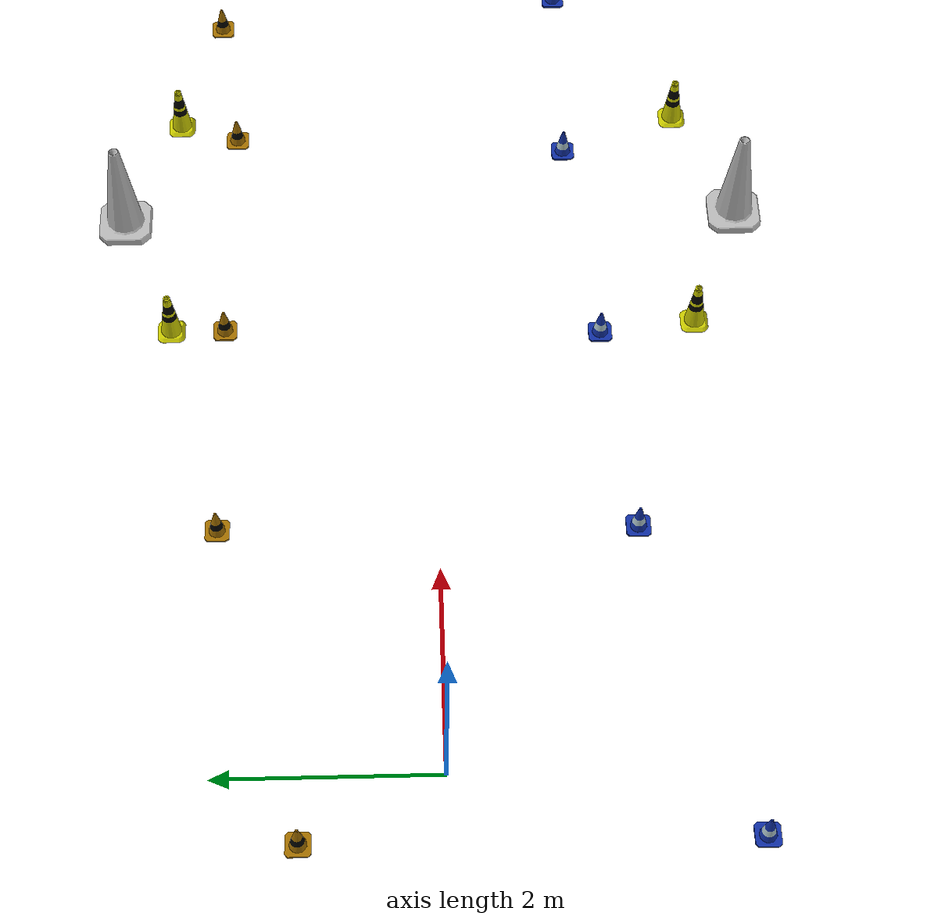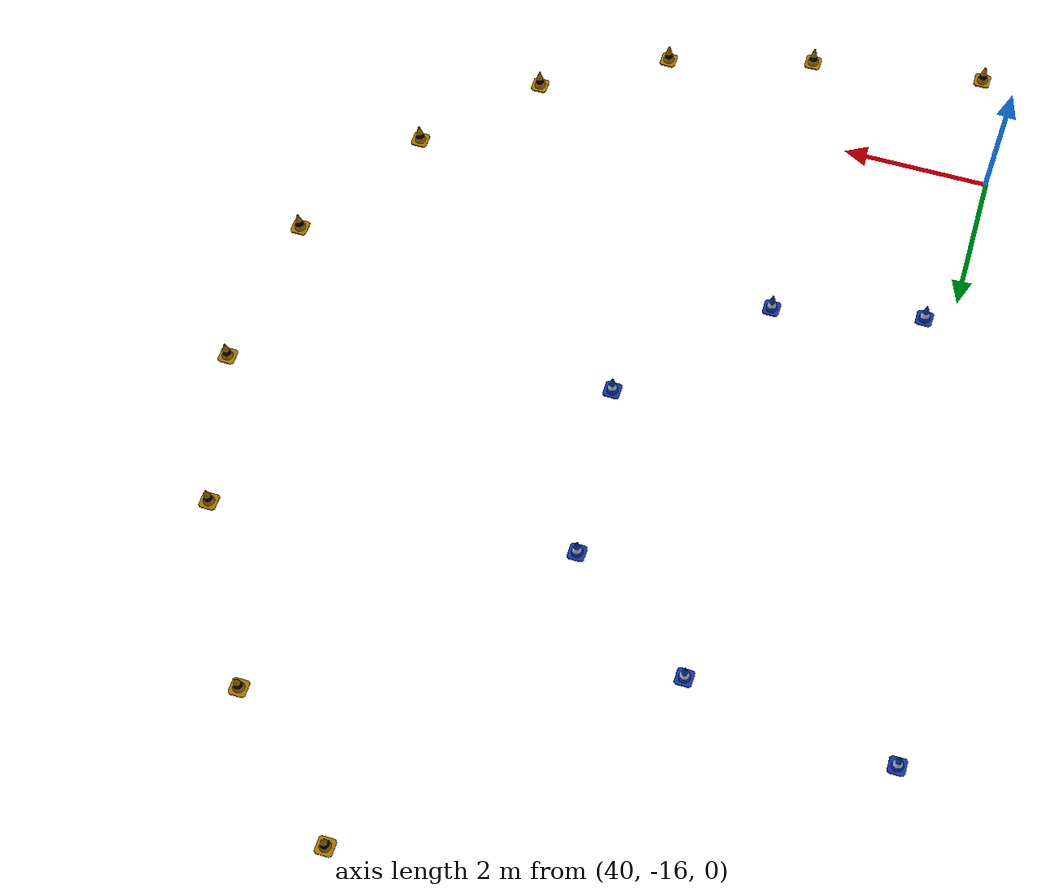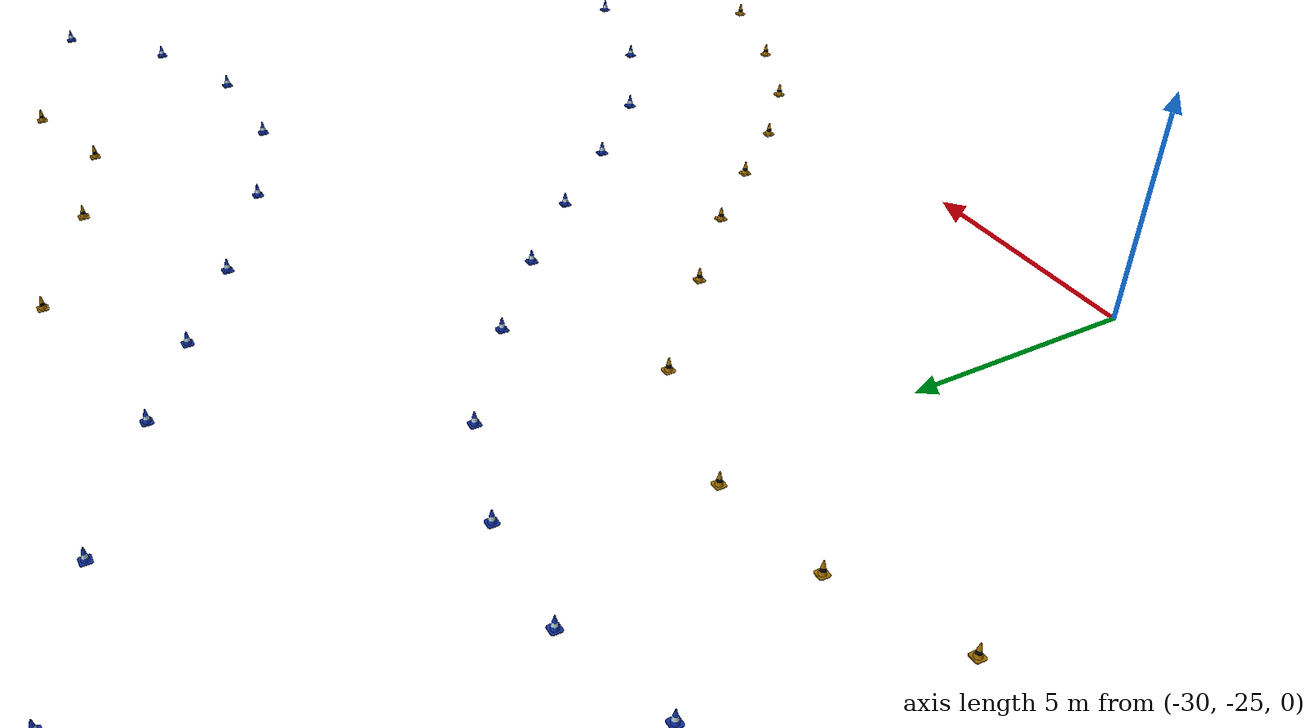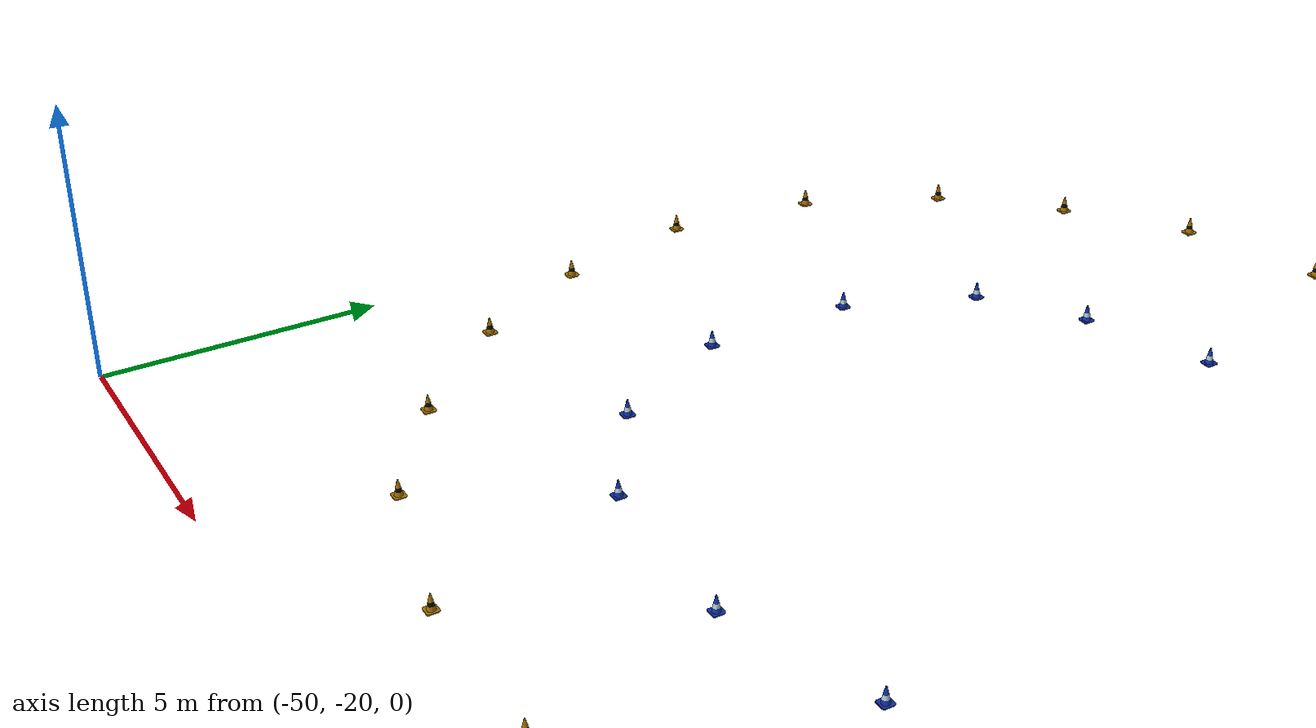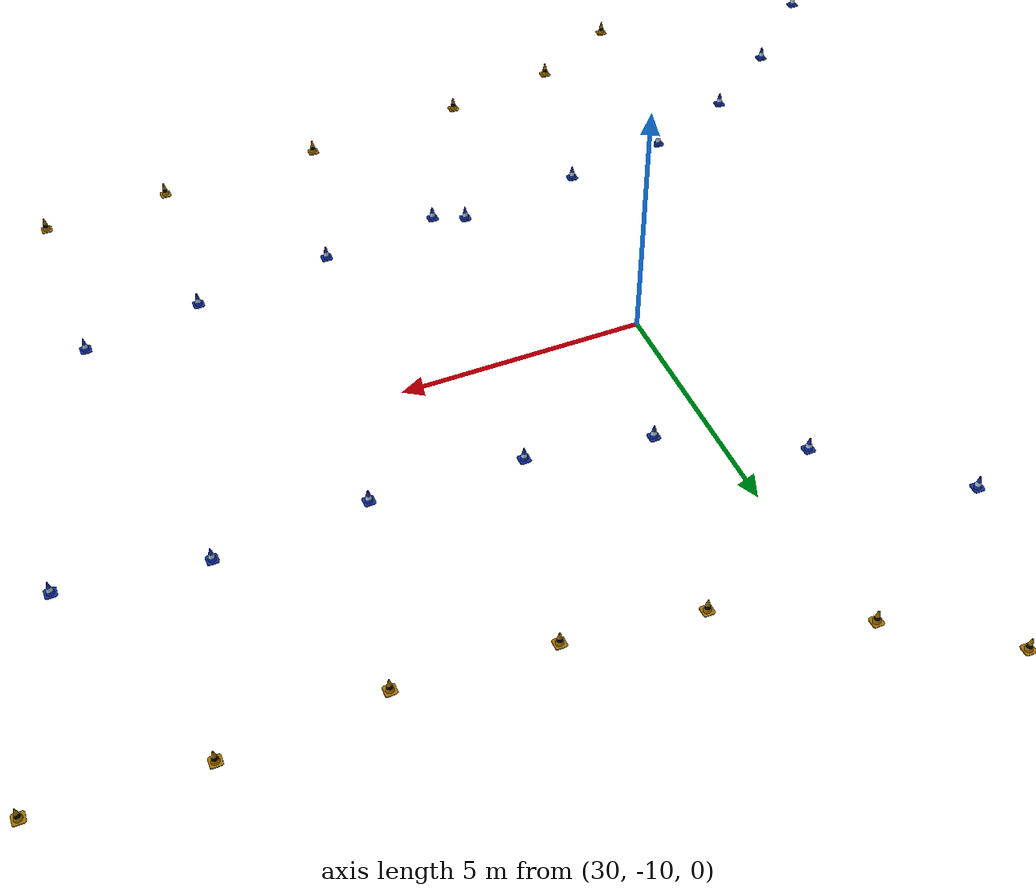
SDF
<sdf version="1.4">
  <model name="some track">
    <include>
      <uri>model://fssim_gazebo/models/cone_blue</uri>
      <pose>-0.540000021458 -2.65199995041 0 0 0 0</pose>
      <name>cone_right0</name>
    </include>
    <include>
      <uri>model://fssim_gazebo/models/cone_blue</uri>
      <pose>2.48799991608 -1.80599999428 0 0 0 0</pose>
      <name>cone_right1</name>
    </include>
    <include>
      <uri>model://fssim_gazebo/models/cone_blue</uri>
      <pose>4.67899990082 -1.60300004482 0 0 0 0</pose>
      <name>cone_right2</name>
    </include>
    <include>
      <uri>model://fssim_gazebo/models/cone_blue</uri>
      <pose>6.97700023651 -1.37300002575 0 0 0 0</pose>
      <name>cone_right3</name>
    </include>
    <include>
      <uri>model://fssim_gazebo/models/cone_blue</uri>
      <pose>9.12399959564 -1.38499999046 0 0 0 0</pose>
      <name>cone_right4</name>
    </include>
    <include>
      <uri>model://fssim_gazebo/models/cone_blue</uri>
      <pose>9.92899990082 -1.57400000095 0 0 0 0</pose>
      <name>cone_right5</name>
    </include>
    <include>
      <uri>model://fssim_gazebo/models/cone_blue</uri>
      <pose>13.6180000305 -1.21399998665 0 0 0 0</pose>
      <name>cone_right6</name>
    </include>
    <include>
      <uri>model://fssim_gazebo/models/cone_blue</uri>
      <pose>17.1529998779 -1.06200003624 0 0 0 0</pose>
      <name>cone_right7</name>
    </include>
    <include>
      <uri>model://fssim_gazebo/models/cone_blue</uri>
      <pose>20.672000885 -1.22099995613 0 0 0 0</pose>
      <name>cone_right8</name>
    </include>
    <include>
      <uri>model://fssim_gazebo/models/cone_blue</uri>
      <pose>23.9090003967 -2.11500000954 0 0 0 0</pose>
      <name>cone_right9</name>
    </include>
    <include>
      <uri>model://fssim_gazebo/models/cone_blue</uri>
      <pose>26.1359996796 -3.76300001144 0 0 0 0</pose>
      <name>cone_right10</name>
    </include>
    <include>
      <uri>model://fssim_gazebo/models/cone_blue</uri>
      <pose>28.4850006104 -5.78900003433 0 0 0 0</pose>
      <name>cone_right11</name>
    </include>
    <include>
      <uri>model://fssim_gazebo/models/cone_blue</uri>
      <pose>30.9979991913 -7.1939997673 0 0 0 0</pose>
      <name>cone_right12</name>
    </include>
    <include>
      <uri>model://fssim_gazebo/models/cone_blue</uri>
      <pose>33.4580001831 -7.6139998436 0 0 0 0</pose>
      <name>cone_right13</name>
    </include>
    <include>
      <uri>model://fssim_gazebo/models/cone_blue</uri>
      <pose>36.4329986572 -7.75 0 0 0 0</pose>
      <name>cone_right14</name>
    </include>
    <include>
      <uri>model://fssim_gazebo/models/cone_blue</uri>
      <pose>39.3709983826 -7.52899980545 0 0 0 0</pose>
      <name>cone_right15</name>
    </include>
    <include>
      <uri>model://fssim_gazebo/models/cone_blue</uri>
      <pose>42.0950012207 -7.88399982452 0 0 0 0</pose>
      <name>cone_right16</name>
    </include>
    <include>
      <uri>model://fssim_gazebo/models/cone_blue</uri>
      <pose>43.8289985657 -9.10900020599 0 0 0 0</pose>
      <name>cone_right17</name>
    </include>
    <include>
      <uri>model://fssim_gazebo/models/cone_blue</uri>
      <pose>44.061000824 -11.4799995422 0 0 0 0</pose>
      <name>cone_right18</name>
    </include>
    <include>
      <uri>model://fssim_gazebo/models/cone_blue</uri>
      <pose>42.3660011292 -13.3009996414 0 0 0 0</pose>
      <name>cone_right19</name>
    </include>
    <include>
      <uri>model://fssim_gazebo/models/cone_blue</uri>
      <pose>40.3650016785 -13.7299995422 0 0 0 0</pose>
      <name>cone_right20</name>
    </include>
    <include>
      <uri>model://fssim_gazebo/models/cone_blue</uri>
      <pose>37.9630012512 -14.2019996643 0 0 0 0</pose>
      <name>cone_right21</name>
    </include>
    <include>
      <uri>model://fssim_gazebo/models/cone_blue</uri>
      <pose>35.091999054 -14.6180000305 0 0 0 0</pose>
      <name>cone_right22</name>
    </include>
    <include>
      <uri>model://fssim_gazebo/models/cone_blue</uri>
      <pose>32.5550003052 -15.0080003738 0 0 0 0</pose>
      <name>cone_right23</name>
    </include>
    <include>
      <uri>model://fssim_gazebo/models/cone_blue</uri>
      <pose>31.8950004578 -14.732000351 0 0 0 0</pose>
      <name>cone_right24</name>
    </include>
    <include>
      <uri>model://fssim_gazebo/models/cone_blue</uri>
      <pose>29.1480007172 -15.1739997864 0 0 0 0</pose>
      <name>cone_right25</name>
    </include>
    <include>
      <uri>model://fssim_gazebo/models/cone_blue</uri>
      <pose>26.7929992676 -15.5839996338 0 0 0 0</pose>
      <name>cone_right26</name>
    </include>
    <include>
      <uri>model://fssim_gazebo/models/cone_blue</uri>
      <pose>24.7269992828 -16.4740009308 0 0 0 0</pose>
      <name>cone_right27</name>
    </include>
    <include>
      <uri>model://fssim_gazebo/models/cone_blue</uri>
      <pose>22.8250007629 -17.8600006104 0 0 0 0</pose>
      <name>cone_right28</name>
    </include>
    <include>
      <uri>model://fssim_gazebo/models/cone_blue</uri>
      <pose>20.8500003815 -19.7590007782 0 0 0 0</pose>
      <name>cone_right29</name>
    </include>
    <include>
      <uri>model://fssim_gazebo/models/cone_blue</uri>
      <pose>17.9470005035 -20.7770004272 0 0 0 0</pose>
      <name>cone_right30</name>
    </include>
    <include>
      <uri>model://fssim_gazebo/models/cone_blue</uri>
      <pose>14.5600004196 -21.3239994049 0 0 0 0</pose>
      <name>cone_right31</name>
    </include>
    <include>
      <uri>model://fssim_gazebo/models/cone_blue</uri>
      <pose>11.5360002518 -21.7299995422 0 0 0 0</pose>
      <name>cone_right32</name>
    </include>
    <include>
      <uri>model://fssim_gazebo/models/cone_blue</uri>
      <pose>8.89700031281 -22.1539993286 0 0 0 0</pose>
      <name>cone_right33</name>
    </include>
    <include>
      <uri>model://fssim_gazebo/models/cone_blue</uri>
      <pose>5.6139998436 -22.468000412 0 0 0 0</pose>
      <name>cone_right34</name>
    </include>
    <include>
      <uri>model://fssim_gazebo/models/cone_blue</uri>
      <pose>1.72800004482 -22.7849998474 0 0 0 0</pose>
      <name>cone_right35</name>
    </include>
    <include>
      <uri>model://fssim_gazebo/models/cone_blue</uri>
      <pose>-1.81500005722 -23.047000885 0 0 0 0</pose>
      <name>cone_right36</name>
    </include>
    <include>
      <uri>model://fssim_gazebo/models/cone_blue</uri>
      <pose>-5.52099990845 -23.2689990997 0 0 0 0</pose>
      <name>cone_right37</name>
    </include>
    <include>
      <uri>model://fssim_gazebo/models/cone_blue</uri>
      <pose>-9.17300033569 -23.4880008698 0 0 0 0</pose>
      <name>cone_right38</name>
    </include>
    <include>
      <uri>model://fssim_gazebo/models/cone_blue</uri>
      <pose>-12.0869998932 -23.6790008545 0 0 0 0</pose>
      <name>cone_right39</name>
    </include>
    <include>
      <uri>model://fssim_gazebo/models/cone_blue</uri>
      <pose>-15.0380001068 -22.7900009155 0 0 0 0</pose>
      <name>cone_right40</name>
    </include>
    <include>
      <uri>model://fssim_gazebo/models/cone_blue</uri>
      <pose>-17.5669994354 -21.2730007172 0 0 0 0</pose>
      <name>cone_right41</name>
    </include>
    <include>
      <uri>model://fssim_gazebo/models/cone_blue</uri>
      <pose>-19.3540000916 -19.4440002441 0 0 0 0</pose>
      <name>cone_right42</name>
    </include>
    <include>
      <uri>model://fssim_gazebo/models/cone_blue</uri>
      <pose>-21.0060005188 -17.5510005951 0 0 0 0</pose>
      <name>cone_right43</name>
    </include>
    <include>
      <uri>model://fssim_gazebo/models/cone_blue</uri>
      <pose>-22.7240009308 -15.8210000992 0 0 0 0</pose>
      <name>cone_right44</name>
    </include>
    <include>
      <uri>model://fssim_gazebo/models/cone_blue</uri>
      <pose>-24.5990009308 -14.1979999542 0 0 0 0</pose>
      <name>cone_right45</name>
    </include>
    <include>
      <uri>model://fssim_gazebo/models/cone_blue</uri>
      <pose>-26.9249992371 -12.501999855 0 0 0 0</pose>
      <name>cone_right46</name>
    </include>
    <include>
      <uri>model://fssim_gazebo/models/cone_blue</uri>
      <pose>-29.311000824 -11.6929998398 0 0 0 0</pose>
      <name>cone_right47</name>
    </include>
    <include>
      <uri>model://fssim_gazebo/models/cone_blue</uri>
      <pose>-31.783000946 -11.5489997864 0 0 0 0</pose>
      <name>cone_right48</name>
    </include>
    <include>
      <uri>model://fssim_gazebo/models/cone_blue</uri>
      <pose>-34.0820007324 -12.2559995651 0 0 0 0</pose>
      <name>cone_right49</name>
    </include>
    <include>
      <uri>model://fssim_gazebo/models/cone_blue</uri>
      <pose>-36.3359985352 -13.2209997177 0 0 0 0</pose>
      <name>cone_right50</name>
    </include>
    <include>
      <uri>model://fssim_gazebo/models/cone_blue</uri>
      <pose>-39.2430000305 -14.1700000763 0 0 0 0</pose>
      <name>cone_right51</name>
    </include>
    <include>
      <uri>model://fssim_gazebo/models/cone_blue</uri>
      <pose>-42.5760002136 -13.9759998322 0 0 0 0</pose>
      <name>cone_right52</name>
    </include>
    <include>
      <uri>model://fssim_gazebo/models/cone_blue</uri>
      <pose>-44.625 -12.6990003586 0 0 0 0</pose>
      <name>cone_right53</name>
    </include>
    <include>
      <uri>model://fssim_gazebo/models/cone_blue</uri>
      <pose>-45.9099998474 -10.3050003052 0 0 0 0</pose>
      <name>cone_right54</name>
    </include>
    <include>
      <uri>model://fssim_gazebo/models/cone_blue</uri>
      <pose>-45.936000824 -7.51599979401 0 0 0 0</pose>
      <name>cone_right55</name>
    </include>
    <include>
      <uri>model://fssim_gazebo/models/cone_blue</uri>
      <pose>-45.0180015564 -5.19299983978 0 0 0 0</pose>
      <name>cone_right56</name>
    </include>
    <include>
      <uri>model://fssim_gazebo/models/cone_blue</uri>
      <pose>-43.327999115 -3.99399995804 0 0 0 0</pose>
      <name>cone_right57</name>
    </include>
    <include>
      <uri>model://fssim_gazebo/models/cone_blue</uri>
      <pose>-41.0579986572 -3.13800001144 0 0 0 0</pose>
      <name>cone_right58</name>
    </include>
    <include>
      <uri>model://fssim_gazebo/models/cone_blue</uri>
      <pose>-38.0559997559 -2.77900004387 0 0 0 0</pose>
      <name>cone_right59</name>
    </include>
    <include>
      <uri>model://fssim_gazebo/models/cone_blue</uri>
      <pose>-35.5419998169 -2.63100004196 0 0 0 0</pose>
      <name>cone_right60</name>
    </include>
    <include>
      <uri>model://fssim_gazebo/models/cone_blue</uri>
      <pose>-32.5849990845 -3.24799990654 0 0 0 0</pose>
      <name>cone_right61</name>
    </include>
    <include>
      <uri>model://fssim_gazebo/models/cone_blue</uri>
      <pose>-30.0990009308 -4.16200017929 0 0 0 0</pose>
      <name>cone_right62</name>
    </include>
    <include>
      <uri>model://fssim_gazebo/models/cone_blue</uri>
      <pose>-27.093000412 -5.53499984741 0 0 0 0</pose>
      <name>cone_right63</name>
    </include>
    <include>
      <uri>model://fssim_gazebo/models/cone_blue</uri>
      <pose>-24.1639995575 -7.27400016785 0 0 0 0</pose>
      <name>cone_right64</name>
    </include>
    <include>
      <uri>model://fssim_gazebo/models/cone_blue</uri>
      <pose>-22.2089996338 -8.57400035858 0 0 0 0</pose>
      <name>cone_right65</name>
    </include>
    <include>
      <uri>model://fssim_gazebo/models/cone_blue</uri>
      <pose>-20.1049995422 -10.0129995346 0 0 0 0</pose>
      <name>cone_right66</name>
    </include>
    <include>
      <uri>model://fssim_gazebo/models/cone_blue</uri>
      <pose>-17.4720001221 -11.529999733 0 0 0 0</pose>
      <name>cone_right67</name>
    </include>
    <include>
      <uri>model://fssim_gazebo/models/cone_blue</uri>
      <pose>-14.6750001907 -12.5710000992 0 0 0 0</pose>
      <name>cone_right68</name>
    </include>
    <include>
      <uri>model://fssim_gazebo/models/cone_blue</uri>
      <pose>-11.7889995575 -12.5520000458 0 0 0 0</pose>
      <name>cone_right69</name>
    </include>
    <include>
      <uri>model://fssim_gazebo/models/cone_blue</uri>
      <pose>-9.25199985504 -11.5089998245 0 0 0 0</pose>
      <name>cone_right70</name>
    </include>
    <include>
      <uri>model://fssim_gazebo/models/cone_blue</uri>
      <pose>-7.12799978256 -9.54300022125 0 0 0 0</pose>
      <name>cone_right71</name>
    </include>
    <include>
      <uri>model://fssim_gazebo/models/cone_blue</uri>
      <pose>-5.63399982452 -7.48799991608 0 0 0 0</pose>
      <name>cone_right72</name>
    </include>
    <include>
      <uri>model://fssim_gazebo/models/cone_blue</uri>
      <pose>-3.56699991226 -5.01000022888 0 0 0 0</pose>
      <name>cone_right73</name>
    </include>
    <include>
      <uri>model://fssim_gazebo/models/cone_blue</uri>
      <pose>-0.540000021458 -2.65199995041 0 0 0 0</pose>
      <name>cone_right74</name>
    </include>
    <include>
      <uri>model://fssim_gazebo/models/cone_yellow</uri>
      <pose>-50.1940002441 -8.58199977875 0 0 0 0</pose>
      <name>cone_left0</name>
    </include>
    <include>
      <uri>model://fssim_gazebo/models/cone_yellow</uri>
      <pose>-49.8790016174 -5.79799985886 0 0 0 0</pose>
      <name>cone_left1</name>
    </include>
    <include>
      <uri>model://fssim_gazebo/models/cone_yellow</uri>
      <pose>-48.7550010681 -3.35299992561 0 0 0 0</pose>
      <name>cone_left2</name>
    </include>
    <include>
      <uri>model://fssim_gazebo/models/cone_yellow</uri>
      <pose>-47.0410003662 -1.51600003242 0 0 0 0</pose>
      <name>cone_left3</name>
    </include>
    <include>
      <uri>model://fssim_gazebo/models/cone_yellow</uri>
      <pose>-45.0699996948 -0.0130000002682 0 0 0 0</pose>
      <name>cone_left4</name>
    </include>
    <include>
      <uri>model://fssim_gazebo/models/cone_yellow</uri>
      <pose>-42.5289993286 0.818000018597 0 0 0 0</pose>
      <name>cone_left5</name>
    </include>
    <include>
      <uri>model://fssim_gazebo/models/cone_yellow</uri>
      <pose>-39.5909996033 1.18099999428 0 0 0 0</pose>
      <name>cone_left6</name>
    </include>
    <include>
      <uri>model://fssim_gazebo/models/cone_yellow</uri>
      <pose>-36.0509986877 1.08000004292 0 0 0 0</pose>
      <name>cone_left7</name>
    </include>
    <include>
      <uri>model://fssim_gazebo/models/cone_yellow</uri>
      <pose>-32.7799987793 0.856999993324 0 0 0 0</pose>
      <name>cone_left8</name>
    </include>
    <include>
      <uri>model://fssim_gazebo/models/cone_yellow</uri>
      <pose>-29.3479995728 -0.268000006676 0 0 0 0</pose>
      <name>cone_left9</name>
    </include>
    <include>
      <uri>model://fssim_gazebo/models/cone_yellow</uri>
      <pose>-26.9869995117 -1.58099997044 0 0 0 0</pose>
      <name>cone_left10</name>
    </include>
    <include>
      <uri>model://fssim_gazebo/models/cone_yellow</uri>
      <pose>-24.4120006561 -3.36100006104 0 0 0 0</pose>
      <name>cone_left11</name>
    </include>
    <include>
      <uri>model://fssim_gazebo/models/cone_yellow</uri>
      <pose>-21.9260005951 -4.92199993134 0 0 0 0</pose>
      <name>cone_left12</name>
    </include>
    <include>
      <uri>model://fssim_gazebo/models/cone_yellow</uri>
      <pose>-19.7220001221 -6.30800008774 0 0 0 0</pose>
      <name>cone_left13</name>
    </include>
    <include>
      <uri>model://fssim_gazebo/models/cone_yellow</uri>
      <pose>-16.5879993439 -7.80499982834 0 0 0 0</pose>
      <name>cone_left14</name>
    </include>
    <include>
      <uri>model://fssim_gazebo/models/cone_yellow</uri>
      <pose>-13.9879999161 -8.64500045776 0 0 0 0</pose>
      <name>cone_left15</name>
    </include>
    <include>
      <uri>model://fssim_gazebo/models/cone_yellow</uri>
      <pose>-11.5509996414 -7.89099979401 0 0 0 0</pose>
      <name>cone_left16</name>
    </include>
    <include>
      <uri>model://fssim_gazebo/models/cone_yellow</uri>
      <pose>-9.34500026703 -6.11800003052 0 0 0 0</pose>
      <name>cone_left17</name>
    </include>
    <include>
      <uri>model://fssim_gazebo/models/cone_yellow</uri>
      <pose>-7.46099996567 -3.76799988747 0 0 0 0</pose>
      <name>cone_left18</name>
    </include>
    <include>
      <uri>model://fssim_gazebo/models/cone_yellow</uri>
      <pose>-5.46000003815 -1.6779999733 0 0 0 0</pose>
      <name>cone_left19</name>
    </include>
    <include>
      <uri>model://fssim_gazebo/models/cone_yellow</uri>
      <pose>-3.23399996758 -0.0450000017881 0 0 0 0</pose>
      <name>cone_left20</name>
    </include>
    <include>
      <uri>model://fssim_gazebo/models/cone_yellow</uri>
      <pose>-0.532000005245 1.24800002575 0 0 0 0</pose>
      <name>cone_left21</name>
    </include>
    <include>
      <uri>model://fssim_gazebo/models/cone_yellow</uri>
      <pose>2.52800011635 2.00900006294 0 0 0 0</pose>
      <name>cone_left22</name>
    </include>
    <include>
      <uri>model://fssim_gazebo/models/cone_yellow</uri>
      <pose>4.77899980545 2.0 0 0 0 0</pose>
      <name>cone_left23</name>
    </include>
    <include>
      <uri>model://fssim_gazebo/models/cone_yellow</uri>
      <pose>7.19899988174 1.93900001049 0 0 0 0</pose>
      <name>cone_left24</name>
    </include>
    <include>
      <uri>model://fssim_gazebo/models/cone_yellow</uri>
      <pose>8.77000045776 2.13400006294 0 0 0 0</pose>
      <name>cone_left25</name>
    </include>
    <include>
      <uri>model://fssim_gazebo/models/cone_yellow</uri>
      <pose>12.6000003815 2.23699998856 0 0 0 0</pose>
      <name>cone_left26</name>
    </include>
    <include>
      <uri>model://fssim_gazebo/models/cone_yellow</uri>
      <pose>16.2380008698 2.32899999619 0 0 0 0</pose>
      <name>cone_left27</name>
    </include>
    <include>
      <uri>model://fssim_gazebo/models/cone_yellow</uri>
      <pose>19.2479991913 2.46000003815 0 0 0 0</pose>
      <name>cone_left28</name>
    </include>
    <include>
      <uri>model://fssim_gazebo/models/cone_yellow</uri>
      <pose>22.4549999237 2.34299993515 0 0 0 0</pose>
      <name>cone_left29</name>
    </include>
    <include>
      <uri>model://fssim_gazebo/models/cone_yellow</uri>
      <pose>25.1560001373 1.30400002003 0 0 0 0</pose>
      <name>cone_left30</name>
    </include>
    <include>
      <uri>model://fssim_gazebo/models/cone_yellow</uri>
      <pose>27.4260005951 -0.435000002384 0 0 0 0</pose>
      <name>cone_left31</name>
    </include>
    <include>
      <uri>model://fssim_gazebo/models/cone_yellow</uri>
      <pose>29.4349994659 -1.89600002766 0 0 0 0</pose>
      <name>cone_left32</name>
    </include>
    <include>
      <uri>model://fssim_gazebo/models/cone_yellow</uri>
      <pose>31.9449996948 -3.20300006866 0 0 0 0</pose>
      <name>cone_left33</name>
    </include>
    <include>
      <uri>model://fssim_gazebo/models/cone_yellow</uri>
      <pose>34.5089988708 -3.55500006676 0 0 0 0</pose>
      <name>cone_left34</name>
    </include>
    <include>
      <uri>model://fssim_gazebo/models/cone_yellow</uri>
      <pose>37.3989982605 -3.77300000191 0 0 0 0</pose>
      <name>cone_left35</name>
    </include>
    <include>
      <uri>model://fssim_gazebo/models/cone_yellow</uri>
      <pose>40.3209991455 -3.58699989319 0 0 0 0</pose>
      <name>cone_left36</name>
    </include>
    <include>
      <uri>model://fssim_gazebo/models/cone_yellow</uri>
      <pose>43.3030014038 -3.77699995041 0 0 0 0</pose>
      <name>cone_left37</name>
    </include>
    <include>
      <uri>model://fssim_gazebo/models/cone_yellow</uri>
      <pose>45.5550003052 -4.66800022125 0 0 0 0</pose>
      <name>cone_left38</name>
    </include>
    <include>
      <uri>model://fssim_gazebo/models/cone_yellow</uri>
      <pose>47.2430000305 -6.21400022507 0 0 0 0</pose>
      <name>cone_left39</name>
    </include>
    <include>
      <uri>model://fssim_gazebo/models/cone_yellow</uri>
      <pose>48.5320014954 -8.45600032806 0 0 0 0</pose>
      <name>cone_left40</name>
    </include>
    <include>
      <uri>model://fssim_gazebo/models/cone_yellow</uri>
      <pose>49.0960006714 -10.5240001678 0 0 0 0</pose>
      <name>cone_left41</name>
    </include>
    <include>
      <uri>model://fssim_gazebo/models/cone_yellow</uri>
      <pose>48.8979988098 -12.718000412 0 0 0 0</pose>
      <name>cone_left42</name>
    </include>
    <include>
      <uri>model://fssim_gazebo/models/cone_yellow</uri>
      <pose>47.7949981689 -14.5920000076 0 0 0 0</pose>
      <name>cone_left43</name>
    </include>
    <include>
      <uri>model://fssim_gazebo/models/cone_yellow</uri>
      <pose>46.4630012512 -15.9910001755 0 0 0 0</pose>
      <name>cone_left44</name>
    </include>
    <include>
      <uri>model://fssim_gazebo/models/cone_yellow</uri>
      <pose>44.8180007935 -16.9599990845 0 0 0 0</pose>
      <name>cone_left45</name>
    </include>
    <include>
      <uri>model://fssim_gazebo/models/cone_yellow</uri>
      <pose>42.8089981079 -17.5100002289 0 0 0 0</pose>
      <name>cone_left46</name>
    </include>
    <include>
      <uri>model://fssim_gazebo/models/cone_yellow</uri>
      <pose>40.4049987793 -17.8840007782 0 0 0 0</pose>
      <name>cone_left47</name>
    </include>
    <include>
      <uri>model://fssim_gazebo/models/cone_yellow</uri>
      <pose>37.7420005798 -18.1189994812 0 0 0 0</pose>
      <name>cone_left48</name>
    </include>
    <include>
      <uri>model://fssim_gazebo/models/cone_yellow</uri>
      <pose>34.2439994812 -18.3899993896 0 0 0 0</pose>
      <name>cone_left49</name>
    </include>
    <include>
      <uri>model://fssim_gazebo/models/cone_yellow</uri>
      <pose>30.6550006866 -18.7619991302 0 0 0 0</pose>
      <name>cone_left50</name>
    </include>
    <include>
      <uri>model://fssim_gazebo/models/cone_yellow</uri>
      <pose>28.0669994354 -19.2759990692 0 0 0 0</pose>
      <name>cone_left51</name>
    </include>
    <include>
      <uri>model://fssim_gazebo/models/cone_yellow</uri>
      <pose>26.0049991608 -20.466999054 0 0 0 0</pose>
      <name>cone_left52</name>
    </include>
    <include>
      <uri>model://fssim_gazebo/models/cone_yellow</uri>
      <pose>23.9869995117 -22.0030002594 0 0 0 0</pose>
      <name>cone_left53</name>
    </include>
    <include>
      <uri>model://fssim_gazebo/models/cone_yellow</uri>
      <pose>20.6539993286 -23.579000473 0 0 0 0</pose>
      <name>cone_left54</name>
    </include>
    <include>
      <uri>model://fssim_gazebo/models/cone_yellow</uri>
      <pose>17.5090007782 -24.4430007935 0 0 0 0</pose>
      <name>cone_left55</name>
    </include>
    <include>
      <uri>model://fssim_gazebo/models/cone_yellow</uri>
      <pose>14.4239997864 -24.767999649 0 0 0 0</pose>
      <name>cone_left56</name>
    </include>
    <include>
      <uri>model://fssim_gazebo/models/cone_yellow</uri>
      <pose>10.3439998627 -25.2430000305 0 0 0 0</pose>
      <name>cone_left57</name>
    </include>
    <include>
      <uri>model://fssim_gazebo/models/cone_yellow</uri>
      <pose>6.29099988937 -25.5650005341 0 0 0 0</pose>
      <name>cone_left58</name>
    </include>
    <include>
      <uri>model://fssim_gazebo/models/cone_yellow</uri>
      <pose>1.7460000515 -26.0189990997 0 0 0 0</pose>
      <name>cone_left59</name>
    </include>
    <include>
      <uri>model://fssim_gazebo/models/cone_yellow</uri>
      <pose>-2.79699993134 -26.4449996948 0 0 0 0</pose>
      <name>cone_left60</name>
    </include>
    <include>
      <uri>model://fssim_gazebo/models/cone_yellow</uri>
      <pose>-6.82600021362 -26.8239994049 0 0 0 0</pose>
      <name>cone_left61</name>
    </include>
    <include>
      <uri>model://fssim_gazebo/models/cone_yellow</uri>
      <pose>-11.0530004501 -27.2240009308 0 0 0 0</pose>
      <name>cone_left62</name>
    </include>
    <include>
      <uri>model://fssim_gazebo/models/cone_yellow</uri>
      <pose>-14.1199998856 -26.9869995117 0 0 0 0</pose>
      <name>cone_left63</name>
    </include>
    <include>
      <uri>model://fssim_gazebo/models/cone_yellow</uri>
      <pose>-16.6630001068 -26.0720005035 0 0 0 0</pose>
      <name>cone_left64</name>
    </include>
    <include>
      <uri>model://fssim_gazebo/models/cone_yellow</uri>
      <pose>-18.7789993286 -25.0030002594 0 0 0 0</pose>
      <name>cone_left65</name>
    </include>
    <include>
      <uri>model://fssim_gazebo/models/cone_yellow</uri>
      <pose>-20.3990001678 -23.5310001373 0 0 0 0</pose>
      <name>cone_left66</name>
    </include>
    <include>
      <uri>model://fssim_gazebo/models/cone_yellow</uri>
      <pose>-21.7129993439 -21.936000824 0 0 0 0</pose>
      <name>cone_left67</name>
    </include>
    <include>
      <uri>model://fssim_gazebo/models/cone_yellow</uri>
      <pose>-23.1319999695 -20.3180007935 0 0 0 0</pose>
      <name>cone_left68</name>
    </include>
    <include>
      <uri>model://fssim_gazebo/models/cone_yellow</uri>
      <pose>-24.9260005951 -18.5909996033 0 0 0 0</pose>
      <name>cone_left69</name>
    </include>
    <include>
      <uri>model://fssim_gazebo/models/cone_yellow</uri>
      <pose>-27.1989994049 -16.4270000458 0 0 0 0</pose>
      <name>cone_left70</name>
    </include>
    <include>
      <uri>model://fssim_gazebo/models/cone_yellow</uri>
      <pose>-30.2660007477 -15.5310001373 0 0 0 0</pose>
      <name>cone_left71</name>
    </include>
    <include>
      <uri>model://fssim_gazebo/models/cone_yellow</uri>
      <pose>-32.736000061 -15.843000412 0 0 0 0</pose>
      <name>cone_left72</name>
    </include>
    <include>
      <uri>model://fssim_gazebo/models/cone_yellow</uri>
      <pose>-35.1360015869 -16.8859996796 0 0 0 0</pose>
      <name>cone_left73</name>
    </include>
    <include>
      <uri>model://fssim_gazebo/models/cone_yellow</uri>
      <pose>-38.1879997253 -17.7479991913 0 0 0 0</pose>
      <name>cone_left74</name>
    </include>
    <include>
      <uri>model://fssim_gazebo/models/cone_yellow</uri>
      <pose>-41.3409996033 -17.7150001526 0 0 0 0</pose>
      <name>cone_left75</name>
    </include>
    <include>
      <uri>model://fssim_gazebo/models/cone_yellow</uri>
      <pose>-44.3079986572 -16.9549999237 0 0 0 0</pose>
      <name>cone_left76</name>
    </include>
    <include>
      <uri>model://fssim_gazebo/models/cone_yellow</uri>
      <pose>-46.4230003357 -15.5129995346 0 0 0 0</pose>
      <name>cone_left77</name>
    </include>
    <include>
      <uri>model://fssim_gazebo/models/cone_yellow</uri>
      <pose>-48.3009986877 -13.4919996262 0 0 0 0</pose>
      <name>cone_left78</name>
    </include>
    <include>
      <uri>model://fssim_gazebo/models/cone_yellow</uri>
      <pose>-49.5219993591 -11.2259998322 0 0 0 0</pose>
      <name>cone_left79</name>
    </include>
    <include>
      <uri>model://fssim_gazebo/models/cone_orange_big</uri>
      <pose>4.7 2.5 0 0 0 0</pose>
      <name>cone_orange_big0</name>
    </include>
    <include>
      <uri>model://fssim_gazebo/models/cone_orange_big</uri>
      <pose>4.7 -2.5 0 0 0 0</pose>
      <name>cone_orange_big1</name>
    </include>
    <include>
      <uri>model://fssim_gazebo/models/cone_orange_big</uri>
      <pose>7.3 2.5 0 0 0 0</pose>
      <name>cone_orange_big2</name>
    </include>
    <include>
      <uri>model://fssim_gazebo/models/cone_orange_big</uri>
      <pose>7.3 -2.5 0 0 0 0</pose>
      <name>cone_orange_big3</name>
    </include>
    <include>
      <uri>model://fssim_gazebo/models/time_keeping</uri>
      <pose>6.0 3.0 0 0 0 0</pose>
      <name>tk_device_0</name>
    </include>
    <include>
      <uri>model://fssim_gazebo/models/time_keeping</uri>
      <pose>6.0 -3.0 0 0 0 0</pose>
      <name>tk_device_1</name>
    </include>
  </model>
</sdf>

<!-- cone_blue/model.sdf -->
<sdf version='1.4'>
  <model name="cone_blue">
    <link name="link">
      <collision name="collision">
        <geometry>
          <mesh>
            <uri>model://fssim_gazebo/meshes/cone/cone_blue.dae</uri>
     	      <scale>1 1 1</scale>
          </mesh>
        </geometry>
      </collision>
      <visual name="visual">
        <geometry>
          <mesh>
            <uri>model://fssim_gazebo/meshes/cone/cone_blue.dae</uri>
            <scale>1 1 1</scale>
          </mesh>
        </geometry>
      </visual>
    </link>
  </model>
</sdf>

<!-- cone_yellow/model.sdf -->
<sdf version='1.4'>
  <model name="cone_yellow">
    <link name="link">
      <collision name="collision">
        <geometry>
          <mesh>
            <uri>model://fssim_gazebo/meshes/cone/cone_yellow.dae</uri>
     	      <scale>1 1 1</scale>
          </mesh>
        </geometry>
      </collision>
      <visual name="visual">
        <geometry>
          <mesh>
            <uri>model://fssim_gazebo/meshes/cone/cone_yellow.dae</uri>
            <scale>1 1 1</scale>
          </mesh>
        </geometry>
      </visual>
    </link>
  </model>
</sdf>

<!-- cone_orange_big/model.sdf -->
<sdf version='1.4'>
  <model name="cone_orange_big">
    <link name="link">
      <collision name="collision">
        <geometry>
          <mesh>
            <uri>model://fssim_gazebo/meshes/cone/cone_orange_big.dae</uri>
     	      <scale>1 1 1</scale>
          </mesh>
        </geometry>
      </collision>
      <visual name="visual">
        <geometry>
          <mesh>
            <uri>model://fssim_gazebo/meshes/cone/cone_orange_big.dae</uri>
            <scale>1 1 1</scale>
          </mesh>
        </geometry>
      </visual>
    </link>
  </model>
</sdf>

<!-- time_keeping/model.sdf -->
<sdf version="1.5">
  <model name="Time Keeping Device">
    <link name="link">
      <collision name="collision">
        <geometry>
          <mesh>
            <scale>10 10 10</scale>
            <uri>model://construction_cone/meshes/construction_cone.dae</uri>
          </mesh>
        </geometry>
      </collision>
      <visual name="visual">
        <geometry>
          <mesh>
            <scale>10 10 10</scale>
            <uri>model://construction_cone/meshes/construction_cone.dae</uri>
          </mesh>
        </geometry>
      </visual>
    </link>
  </model>
</sdf>
